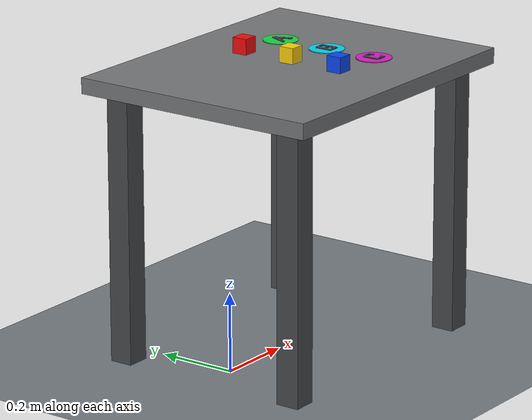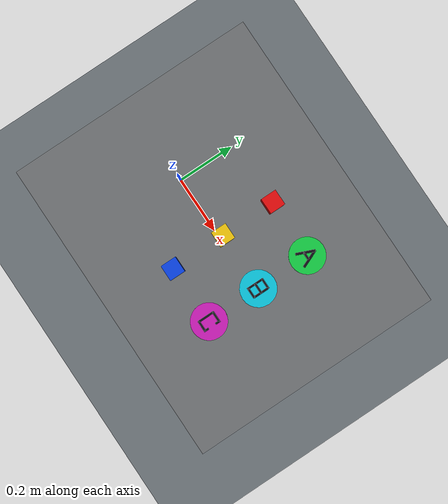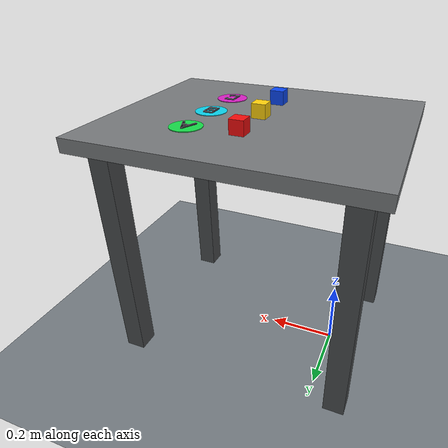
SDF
<?xml version="1.0"?>
<sdf version="1.8">
  <world name="llm_robot">
    <physics name="1ms" type="ignored">
      <max_step_size>0.001</max_step_size>
      <real_time_factor>1.0</real_time_factor>
    </physics>
    <plugin filename="ignition-gazebo-physics-system" name="ignition::gazebo::systems::Physics"/>
    <plugin filename="ignition-gazebo-user-commands-system" name="ignition::gazebo::systems::UserCommands"/>
    <plugin filename="ignition-gazebo-scene-broadcaster-system" name="ignition::gazebo::systems::SceneBroadcaster"/>

    <scene>
      <ambient>0.75 0.75 0.75 1</ambient>
      <background>0.82 0.86 0.90 1</background>
      <shadows>true</shadows>
    </scene>

    <light type="directional" name="sun">
      <cast_shadows>true</cast_shadows>
      <pose>0 0 5 0 0 0</pose>
      <diffuse>0.9 0.9 0.9 1</diffuse>
      <specular>0.2 0.2 0.2 1</specular>
      <direction>-0.5 0.2 -1.0</direction>
    </light>

    <model name="ground_plane">
      <static>true</static>
      <link name="link">
        <collision name="collision">
          <geometry><plane><normal>0 0 1</normal><size>10 10</size></plane></geometry>
        </collision>
        <visual name="visual">
          <geometry><plane><normal>0 0 1</normal><size>10 10</size></plane></geometry>
          <material><ambient>0.35 0.38 0.40 1</ambient><diffuse>0.45 0.48 0.50 1</diffuse></material>
        </visual>
      </link>
    </model>

    <model name="work_table">
      <static>true</static>
      <link name="table">
        <collision name="top_collision"><pose>0.25 0 0.70 0 0 0</pose><geometry><box><size>0.80 0.65 0.04</size></box></geometry></collision>
        <visual name="top_visual"><pose>0.25 0 0.70 0 0 0</pose>
          <geometry><box><size>0.80 0.65 0.04</size></box></geometry>
          <material><ambient>0.30 0.31 0.32 1</ambient><diffuse>0.46 0.47 0.48 1</diffuse></material>
        </visual>
        <collision name="front_left_leg_collision"><pose>-0.08 0.25 0.34 0 0 0</pose><geometry><box><size>0.06 0.06 0.68</size></box></geometry></collision>
        <visual name="front_left_leg_visual"><pose>-0.08 0.25 0.34 0 0 0</pose><geometry><box><size>0.06 0.06 0.68</size></box></geometry><material><ambient>0.18 0.19 0.20 1</ambient><diffuse>0.28 0.29 0.30 1</diffuse></material></visual>
        <collision name="front_right_leg_collision"><pose>-0.08 -0.25 0.34 0 0 0</pose><geometry><box><size>0.06 0.06 0.68</size></box></geometry></collision>
        <visual name="front_right_leg_visual"><pose>-0.08 -0.25 0.34 0 0 0</pose><geometry><box><size>0.06 0.06 0.68</size></box></geometry><material><ambient>0.18 0.19 0.20 1</ambient><diffuse>0.28 0.29 0.30 1</diffuse></material></visual>
        <collision name="rear_left_leg_collision"><pose>0.58 0.25 0.34 0 0 0</pose><geometry><box><size>0.06 0.06 0.68</size></box></geometry></collision>
        <visual name="rear_left_leg_visual"><pose>0.58 0.25 0.34 0 0 0</pose><geometry><box><size>0.06 0.06 0.68</size></box></geometry><material><ambient>0.18 0.19 0.20 1</ambient><diffuse>0.28 0.29 0.30 1</diffuse></material></visual>
        <collision name="rear_right_leg_collision"><pose>0.58 -0.25 0.34 0 0 0</pose><geometry><box><size>0.06 0.06 0.68</size></box></geometry></collision>
        <visual name="rear_right_leg_visual"><pose>0.58 -0.25 0.34 0 0 0</pose><geometry><box><size>0.06 0.06 0.68</size></box></geometry><material><ambient>0.18 0.19 0.20 1</ambient><diffuse>0.28 0.29 0.30 1</diffuse></material></visual>
      </link>
    </model>

    <model name="red_cube">
      <static>true</static><pose>0.25 0.14 0.742 0 0 0</pose>
      <link name="link">
        <collision name="collision"><geometry><box><size>0.04 0.04 0.04</size></box></geometry></collision>
        <visual name="visual"><geometry><box><size>0.04 0.04 0.04</size></box></geometry>
          <material><ambient>0.75 0.03 0.03 1</ambient><diffuse>0.95 0.05 0.05 1</diffuse></material>
        </visual>
      </link>
    </model>
    <model name="yellow_cube">
      <static>true</static><pose>0.25 0 0.742 0 0 0</pose>
      <link name="link">
        <collision name="collision"><geometry><box><size>0.04 0.04 0.04</size></box></geometry></collision>
        <visual name="visual"><geometry><box><size>0.04 0.04 0.04</size></box></geometry>
          <material><ambient>0.85 0.68 0.02 1</ambient><diffuse>1.0 0.82 0.04 1</diffuse></material>
        </visual>
      </link>
    </model>
    <model name="blue_cube">
      <static>true</static><pose>0.25 -0.14 0.742 0 0 0</pose>
      <link name="link">
        <collision name="collision"><geometry><box><size>0.04 0.04 0.04</size></box></geometry></collision>
        <visual name="visual"><geometry><box><size>0.04 0.04 0.04</size></box></geometry>
          <material><ambient>0.02 0.18 0.72 1</ambient><diffuse>0.04 0.28 0.95 1</diffuse></material>
        </visual>
      </link>
    </model>

    <model name="zone_a">
      <static>true</static><pose>0.40 0.14 0.721 0 0 0</pose>
      <link name="link">
        <visual name="zone"><geometry><cylinder><radius>0.045</radius><length>0.002</length></cylinder></geometry>
          <material><ambient>0.05 0.60 0.20 1</ambient><diffuse>0.08 0.85 0.28 1</diffuse></material>
        </visual>
        <visual name="label_a_left"><pose>-0.009 0 0.003 0 0 -0.40</pose>
          <geometry><box><size>0.006 0.048 0.003</size></box></geometry>
          <material><ambient>0.03 0.03 0.04 1</ambient><diffuse>0.06 0.06 0.08 1</diffuse></material>
        </visual>
        <visual name="label_a_right"><pose>0.009 0 0.003 0 0 0.40</pose>
          <geometry><box><size>0.006 0.048 0.003</size></box></geometry>
          <material><ambient>0.03 0.03 0.04 1</ambient><diffuse>0.06 0.06 0.08 1</diffuse></material>
        </visual>
        <visual name="label_a_bar"><pose>0 -0.003 0.003 0 0 0</pose>
          <geometry><box><size>0.024 0.005 0.003</size></box></geometry>
          <material><ambient>0.03 0.03 0.04 1</ambient><diffuse>0.06 0.06 0.08 1</diffuse></material>
        </visual>
      </link>
    </model>
    <model name="zone_b">
      <static>true</static><pose>0.40 0 0.721 0 0 0</pose>
      <link name="link">
        <visual name="zone"><geometry><cylinder><radius>0.045</radius><length>0.002</length></cylinder></geometry>
          <material><ambient>0.02 0.60 0.68 1</ambient><diffuse>0.04 0.82 0.92 1</diffuse></material>
        </visual>
        <visual name="label_b_stem"><pose>-0.013 0 0.003 0 0 0</pose>
          <geometry><box><size>0.005 0.045 0.003</size></box></geometry>
          <material><ambient>0.03 0.03 0.04 1</ambient><diffuse>0.06 0.06 0.08 1</diffuse></material>
        </visual>
        <visual name="label_b_top"><pose>0 0.020 0.003 0 0 0</pose>
          <geometry><box><size>0.027 0.005 0.003</size></box></geometry>
          <material><ambient>0.03 0.03 0.04 1</ambient><diffuse>0.06 0.06 0.08 1</diffuse></material>
        </visual>
        <visual name="label_b_middle"><pose>0 0 0.003 0 0 0</pose>
          <geometry><box><size>0.027 0.005 0.003</size></box></geometry>
          <material><ambient>0.03 0.03 0.04 1</ambient><diffuse>0.06 0.06 0.08 1</diffuse></material>
        </visual>
        <visual name="label_b_bottom"><pose>0 -0.020 0.003 0 0 0</pose>
          <geometry><box><size>0.027 0.005 0.003</size></box></geometry>
          <material><ambient>0.03 0.03 0.04 1</ambient><diffuse>0.06 0.06 0.08 1</diffuse></material>
        </visual>
        <visual name="label_b_upper"><pose>0.012 0.010 0.003 0 0 0</pose>
          <geometry><box><size>0.005 0.020 0.003</size></box></geometry>
          <material><ambient>0.03 0.03 0.04 1</ambient><diffuse>0.06 0.06 0.08 1</diffuse></material>
        </visual>
        <visual name="label_b_lower"><pose>0.012 -0.010 0.003 0 0 0</pose>
          <geometry><box><size>0.005 0.020 0.003</size></box></geometry>
          <material><ambient>0.03 0.03 0.04 1</ambient><diffuse>0.06 0.06 0.08 1</diffuse></material>
        </visual>
      </link>
    </model>
    <model name="zone_c">
      <static>true</static><pose>0.40 -0.14 0.721 0 0 0</pose>
      <link name="link">
        <visual name="zone"><geometry><cylinder><radius>0.045</radius><length>0.002</length></cylinder></geometry>
          <material><ambient>0.60 0.08 0.55 1</ambient><diffuse>0.84 0.12 0.76 1</diffuse></material>
        </visual>
        <visual name="label_c_left"><pose>-0.013 0 0.003 0 0 0</pose>
          <geometry><box><size>0.005 0.040 0.003</size></box></geometry>
          <material><ambient>0.03 0.03 0.04 1</ambient><diffuse>0.06 0.06 0.08 1</diffuse></material>
        </visual>
        <visual name="label_c_top"><pose>0 0.020 0.003 0 0 0</pose>
          <geometry><box><size>0.030 0.005 0.003</size></box></geometry>
          <material><ambient>0.03 0.03 0.04 1</ambient><diffuse>0.06 0.06 0.08 1</diffuse></material>
        </visual>
        <visual name="label_c_bottom"><pose>0 -0.020 0.003 0 0 0</pose>
          <geometry><box><size>0.030 0.005 0.003</size></box></geometry>
          <material><ambient>0.03 0.03 0.04 1</ambient><diffuse>0.06 0.06 0.08 1</diffuse></material>
        </visual>
        <visual name="label_c_upper_tip"><pose>0.013 0.016 0.003 0 0 0</pose>
          <geometry><box><size>0.005 0.012 0.003</size></box></geometry>
          <material><ambient>0.03 0.03 0.04 1</ambient><diffuse>0.06 0.06 0.08 1</diffuse></material>
        </visual>
        <visual name="label_c_lower_tip"><pose>0.013 -0.016 0.003 0 0 0</pose>
          <geometry><box><size>0.005 0.012 0.003</size></box></geometry>
          <material><ambient>0.03 0.03 0.04 1</ambient><diffuse>0.06 0.06 0.08 1</diffuse></material>
        </visual>
      </link>
    </model>
  </world>
</sdf>
